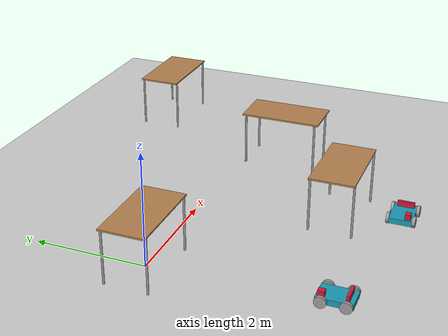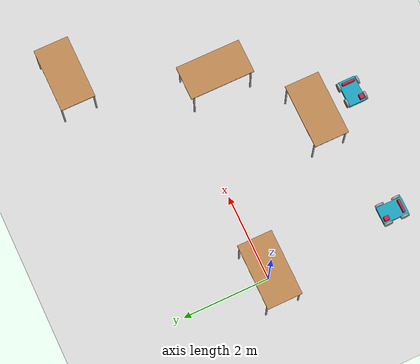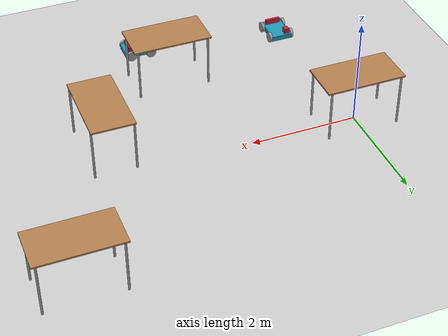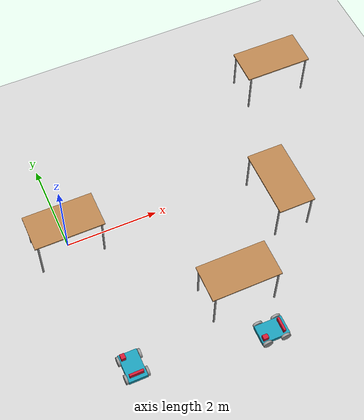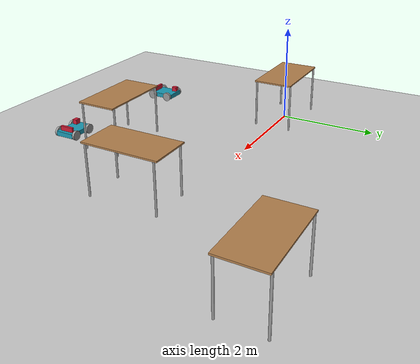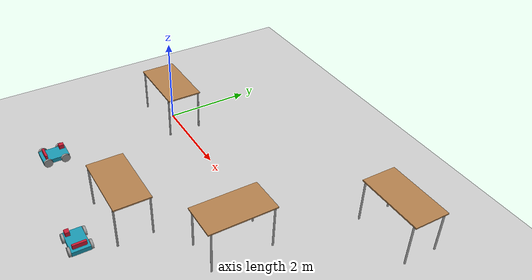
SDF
<sdf version="1.7">
 <world name="__default__">
  <model name="ground_plane">
   <static>1</static>
   <link name="link">
    <collision name="collision">
     <geometry><plane><normal>0 0 1</normal><size>100 100</size></plane></geometry>
     <surface>
      <contact><collide_bitmask>65535</collide_bitmask></contact>
      <friction><ode><mu>100</mu><mu2>50</mu2></ode></friction>
     </surface>
    </collision>
    <visual name="visual">
     <cast_shadows>0</cast_shadows>
     <geometry><plane><normal>0 0 1</normal><size>100 100</size></plane></geometry>
     <material>
      <script><uri>file://media/materials/scripts/gazebo.material</uri><name>Gazebo/Grey</name></script>
     </material>
    </visual>
   </link>
   <pose>-0.312516 -2.64331 0 0 -0 0</pose>
  </model>
  <model name="table">
   <static>1</static>
   <link name="link">
    <collision name="surface">
     <pose>0 0 1 0 -0 0</pose>
     <geometry><box><size>1.5 0.8 0.03</size></box></geometry>
     <surface><friction><ode><mu>0.6</mu><mu2>0.6</mu2></ode></friction></surface>
    </collision>
    <visual name="visual1">
     <pose>0 0 1 0 -0 0</pose>
     <geometry><box><size>1.5 0.8 0.03</size></box></geometry>
     <material>
      <script><uri>file://media/materials/scripts/gazebo.material</uri><name>Gazebo/Wood</name></script>
     </material>
    </visual>
    <collision name="front_left_leg">
     <pose>0.68 0.38 0.5 0 -0 0</pose>
     <geometry><cylinder><radius>0.02</radius><length>1</length></cylinder></geometry>
    </collision>
    <visual name="front_left_leg">
     <pose>0.68 0.38 0.5 0 -0 0</pose>
     <geometry><cylinder><radius>0.02</radius><length>1</length></cylinder></geometry>
     <material>
      <script><uri>file://media/materials/scripts/gazebo.material</uri><name>Gazebo/Grey</name></script>
     </material>
    </visual>
    <collision name="front_right_leg">
     <pose>0.68 -0.38 0.5 0 -0 0</pose>
     <geometry><cylinder><radius>0.02</radius><length>1</length></cylinder></geometry>
    </collision>
    <visual name="front_right_leg">
     <pose>0.68 -0.38 0.5 0 -0 0</pose>
     <geometry><cylinder><radius>0.02</radius><length>1</length></cylinder></geometry>
     <material>
      <script><uri>file://media/materials/scripts/gazebo.material</uri><name>Gazebo/Grey</name></script>
     </material>
    </visual>
    <collision name="back_right_leg">
     <pose>-0.68 -0.38 0.5 0 -0 0</pose>
     <geometry><cylinder><radius>0.02</radius><length>1</length></cylinder></geometry>
    </collision>
    <visual name="back_right_leg">
     <pose>-0.68 -0.38 0.5 0 -0 0</pose>
     <geometry><cylinder><radius>0.02</radius><length>1</length></cylinder></geometry>
     <material>
      <script><uri>file://media/materials/scripts/gazebo.material</uri><name>Gazebo/Grey</name></script>
     </material>
    </visual>
    <collision name="back_left_leg">
     <pose>-0.68 0.38 0.5 0 -0 0</pose>
     <geometry><cylinder><radius>0.02</radius><length>1</length></cylinder></geometry>
    </collision>
    <visual name="back_left_leg">
     <pose>-0.68 0.38 0.5 0 -0 0</pose>
     <geometry><cylinder><radius>0.02</radius><length>1</length></cylinder></geometry>
     <material>
      <script><uri>file://media/materials/scripts/gazebo.material</uri><name>Gazebo/Grey</name></script>
     </material>
    </visual>
   </link>
   <pose>5.79349 2.16075 0 0 -0 0</pose>
  </model>
  <model name="table_0">
   <static>1</static>
   <link name="link">
    <collision name="surface">
     <pose>0 0 1 0 -0 0</pose>
     <geometry><box><size>1.5 0.8 0.03</size></box></geometry>
     <surface><friction><ode><mu>0.6</mu><mu2>0.6</mu2></ode></friction></surface>
    </collision>
    <visual name="visual1">
     <pose>0 0 1 0 -0 0</pose>
     <geometry><box><size>1.5 0.8 0.03</size></box></geometry>
     <material>
      <script><uri>file://media/materials/scripts/gazebo.material</uri><name>Gazebo/Wood</name></script>
     </material>
    </visual>
    <collision name="front_left_leg">
     <pose>0.68 0.38 0.5 0 -0 0</pose>
     <geometry><cylinder><radius>0.02</radius><length>1</length></cylinder></geometry>
    </collision>
    <visual name="front_left_leg">
     <pose>0.68 0.38 0.5 0 -0 0</pose>
     <geometry><cylinder><radius>0.02</radius><length>1</length></cylinder></geometry>
     <material>
      <script><uri>file://media/materials/scripts/gazebo.material</uri><name>Gazebo/Grey</name></script>
     </material>
    </visual>
    <collision name="front_right_leg">
     <pose>0.68 -0.38 0.5 0 -0 0</pose>
     <geometry><cylinder><radius>0.02</radius><length>1</length></cylinder></geometry>
    </collision>
    <visual name="front_right_leg">
     <pose>0.68 -0.38 0.5 0 -0 0</pose>
     <geometry><cylinder><radius>0.02</radius><length>1</length></cylinder></geometry>
     <material>
      <script><uri>file://media/materials/scripts/gazebo.material</uri><name>Gazebo/Grey</name></script>
     </material>
    </visual>
    <collision name="back_right_leg">
     <pose>-0.68 -0.38 0.5 0 -0 0</pose>
     <geometry><cylinder><radius>0.02</radius><length>1</length></cylinder></geometry>
    </collision>
    <visual name="back_right_leg">
     <pose>-0.68 -0.38 0.5 0 -0 0</pose>
     <geometry><cylinder><radius>0.02</radius><length>1</length></cylinder></geometry>
     <material>
      <script><uri>file://media/materials/scripts/gazebo.material</uri><name>Gazebo/Grey</name></script>
     </material>
    </visual>
    <collision name="back_left_leg">
     <pose>-0.68 0.38 0.5 0 -0 0</pose>
     <geometry><cylinder><radius>0.02</radius><length>1</length></cylinder></geometry>
    </collision>
    <visual name="back_left_leg">
     <pose>-0.68 0.38 0.5 0 -0 0</pose>
     <geometry><cylinder><radius>0.02</radius><length>1</length></cylinder></geometry>
     <material>
      <script><uri>file://media/materials/scripts/gazebo.material</uri><name>Gazebo/Grey</name></script>
     </material>
    </visual>
   </link>
  </model>
  <model name="table_1">
   <static>1</static>
   <link name="link">
    <collision name="surface">
     <pose>0 0 1 0 -0 0</pose>
     <geometry><box><size>1.5 0.8 0.03</size></box></geometry>
     <surface><friction><ode><mu>0.6</mu><mu2>0.6</mu2></ode></friction></surface>
    </collision>
    <visual name="visual1">
     <pose>0 0 1 0 -0 0</pose>
     <geometry><box><size>1.5 0.8 0.03</size></box></geometry>
     <material>
      <script><uri>file://media/materials/scripts/gazebo.material</uri><name>Gazebo/Wood</name></script>
     </material>
    </visual>
    <collision name="front_left_leg">
     <pose>0.68 0.38 0.5 0 -0 0</pose>
     <geometry><cylinder><radius>0.02</radius><length>1</length></cylinder></geometry>
    </collision>
    <visual name="front_left_leg">
     <pose>0.68 0.38 0.5 0 -0 0</pose>
     <geometry><cylinder><radius>0.02</radius><length>1</length></cylinder></geometry>
     <material>
      <script><uri>file://media/materials/scripts/gazebo.material</uri><name>Gazebo/Grey</name></script>
     </material>
    </visual>
    <collision name="front_right_leg">
     <pose>0.68 -0.38 0.5 0 -0 0</pose>
     <geometry><cylinder><radius>0.02</radius><length>1</length></cylinder></geometry>
    </collision>
    <visual name="front_right_leg">
     <pose>0.68 -0.38 0.5 0 -0 0</pose>
     <geometry><cylinder><radius>0.02</radius><length>1</length></cylinder></geometry>
     <material>
      <script><uri>file://media/materials/scripts/gazebo.material</uri><name>Gazebo/Grey</name></script>
     </material>
    </visual>
    <collision name="back_right_leg">
     <pose>-0.68 -0.38 0.5 0 -0 0</pose>
     <geometry><cylinder><radius>0.02</radius><length>1</length></cylinder></geometry>
    </collision>
    <visual name="back_right_leg">
     <pose>-0.68 -0.38 0.5 0 -0 0</pose>
     <geometry><cylinder><radius>0.02</radius><length>1</length></cylinder></geometry>
     <material>
      <script><uri>file://media/materials/scripts/gazebo.material</uri><name>Gazebo/Grey</name></script>
     </material>
    </visual>
    <collision name="back_left_leg">
     <pose>-0.68 0.38 0.5 0 -0 0</pose>
     <geometry><cylinder><radius>0.02</radius><length>1</length></cylinder></geometry>
    </collision>
    <visual name="back_left_leg">
     <pose>-0.68 0.38 0.5 0 -0 0</pose>
     <geometry><cylinder><radius>0.02</radius><length>1</length></cylinder></geometry>
     <material>
      <script><uri>file://media/materials/scripts/gazebo.material</uri><name>Gazebo/Grey</name></script>
     </material>
    </visual>
   </link>
   <pose>2.74236 -2.43445 0 0 -0 0</pose>
  </model>
  <model name="table_4">
   <static>1</static>
   <link name="link">
    <collision name="surface">
     <pose>0 0 1 0 -0 0</pose>
     <geometry><box><size>1.5 0.8 0.03</size></box></geometry>
     <surface><friction><ode><mu>0.6</mu><mu2>0.6</mu2></ode></friction></surface>
    </collision>
    <visual name="visual1">
     <pose>0 0 1 0 -0 0</pose>
     <geometry><box><size>1.5 0.8 0.03</size></box></geometry>
     <material>
      <script><uri>file://media/materials/scripts/gazebo.material</uri><name>Gazebo/Wood</name></script>
     </material>
    </visual>
    <collision name="front_left_leg">
     <pose>0.68 0.38 0.5 0 -0 0</pose>
     <geometry><cylinder><radius>0.02</radius><length>1</length></cylinder></geometry>
    </collision>
    <visual name="front_left_leg">
     <pose>0.68 0.38 0.5 0 -0 0</pose>
     <geometry><cylinder><radius>0.02</radius><length>1</length></cylinder></geometry>
     <material>
      <script><uri>file://media/materials/scripts/gazebo.material</uri><name>Gazebo/Grey</name></script>
     </material>
    </visual>
    <collision name="front_right_leg">
     <pose>0.68 -0.38 0.5 0 -0 0</pose>
     <geometry><cylinder><radius>0.02</radius><length>1</length></cylinder></geometry>
    </collision>
    <visual name="front_right_leg">
     <pose>0.68 -0.38 0.5 0 -0 0</pose>
     <geometry><cylinder><radius>0.02</radius><length>1</length></cylinder></geometry>
     <material>
      <script><uri>file://media/materials/scripts/gazebo.material</uri><name>Gazebo/Grey</name></script>
     </material>
    </visual>
    <collision name="back_right_leg">
     <pose>-0.68 -0.38 0.5 0 -0 0</pose>
     <geometry><cylinder><radius>0.02</radius><length>1</length></cylinder></geometry>
    </collision>
    <visual name="back_right_leg">
     <pose>-0.68 -0.38 0.5 0 -0 0</pose>
     <geometry><cylinder><radius>0.02</radius><length>1</length></cylinder></geometry>
     <material>
      <script><uri>file://media/materials/scripts/gazebo.material</uri><name>Gazebo/Grey</name></script>
     </material>
    </visual>
    <collision name="back_left_leg">
     <pose>-0.68 0.38 0.5 0 -0 0</pose>
     <geometry><cylinder><radius>0.02</radius><length>1</length></cylinder></geometry>
    </collision>
    <visual name="back_left_leg">
     <pose>-0.68 0.38 0.5 0 -0 0</pose>
     <geometry><cylinder><radius>0.02</radius><length>1</length></cylinder></geometry>
     <material>
      <script><uri>file://media/materials/scripts/gazebo.material</uri><name>Gazebo/Grey</name></script>
     </material>
    </visual>
   </link>
   <pose>4.48849 -0.834132 0 0 -0 1.5707</pose>
  </model>
  <model name="RoverBot">
   <link name="link_1">
    <inertial>
     <mass>1</mass>
     <inertia>
      <ixx>0.166667</ixx>
      <ixy>0</ixy>
      <ixz>0</ixz>
      <iyy>0.166667</iyy>
      <iyz>0</iyz>
      <izz>0.166667</izz>
     </inertia>
    </inertial>
    <pose>0.016896 -0.001903 -0.028571 0 -0 0</pose>
    <visual name="visual">
     <geometry><box><size>0.4 0.6 0.1</size></box></geometry>
     <material>
      <lighting>1</lighting>
      <script><uri>file://media/materials/scripts/gazebo.material</uri><name>Gazebo/Grey</name></script>
      <shader type="pixel"><normal_map>__default__</normal_map></shader>
      <ambient>0.1 0.6 0.7 1</ambient>
      <diffuse>0.7 0.7 0.7 1</diffuse>
      <specular>0.01 0.01 0.01 1</specular>
      <emissive>0 0 0 1</emissive>
     </material>
    </visual>
    <collision name="collision">
     <geometry><box><size>0.4 0.6 0.1</size></box></geometry>
     <surface>
      <friction>
       <ode><mu>1</mu><mu2>1</mu2><fdir1>0 0 0</fdir1><slip1>0</slip1><slip2>0</slip2></ode>
       <torsional>
        <coefficient>1</coefficient>
        <patch_radius>0</patch_radius>
        <surface_radius>0</surface_radius>
        <use_patch_radius>1</use_patch_radius>
        <ode><slip>0</slip></ode>
       </torsional>
      </friction>
      <bounce><restitution_coefficient>0</restitution_coefficient><threshold>1e+06</threshold></bounce>
      <contact>
       <collide_without_contact>0</collide_without_contact>
       <collide_without_contact_bitmask>1</collide_without_contact_bitmask>
       <collide_bitmask>1</collide_bitmask>
       <ode>
        <soft_cfm>0</soft_cfm>
        <soft_erp>0.2</soft_erp>
        <kp>1e+13</kp>
        <kd>1</kd>
        <max_vel>0.01</max_vel>
        <min_depth>0</min_depth>
       </ode>
       <bullet>
        <split_impulse>1</split_impulse>
        <split_impulse_penetration_threshold>-0.01</split_impulse_penetration_threshold>
        <soft_cfm>0</soft_cfm>
        <soft_erp>0.2</soft_erp>
        <kp>1e+13</kp>
        <kd>1</kd>
       </bullet>
      </contact>
     </surface>
    </collision>
   </link>
   <link name="link_2">
    <inertial>
     <mass>1</mass>
     <inertia><ixx>0.145833</ixx><ixy>0</ixy><ixz>0</ixz><iyy>0.145833</iyy><iyz>0</iyz><izz>0.125</izz></inertia>
    </inertial>
    <pose>0.241896 -0.201903 -0.028571 0 1.5707 0</pose>
    <visual name="visual">
     <geometry><cylinder><radius>0.1</radius><length>0.05</length></cylinder></geometry>
     <material>
      <lighting>1</lighting>
      <script><uri>file://media/materials/scripts/gazebo.material</uri><name>Gazebo/Grey</name></script>
      <shader type="pixel"><normal_map>__default__</normal_map></shader>
      <ambient>0 0 0 1</ambient>
      <diffuse>0.7 0.7 0.7 1</diffuse>
      <specular>0.01 0.01 0.01 1</specular>
      <emissive>0 0 0 1</emissive>
     </material>
    </visual>
    <collision name="collision">
     <geometry><cylinder><radius>0.1</radius><length>0.05</length></cylinder></geometry>
     <surface>
      <friction>
       <ode><mu>1</mu><mu2>1</mu2><fdir1>0 0 0</fdir1><slip1>0</slip1><slip2>0</slip2></ode>
       <torsional>
        <coefficient>1</coefficient>
        <patch_radius>0</patch_radius>
        <surface_radius>0</surface_radius>
        <use_patch_radius>1</use_patch_radius>
        <ode><slip>0</slip></ode>
       </torsional>
      </friction>
      <bounce><restitution_coefficient>0</restitution_coefficient><threshold>1e+06</threshold></bounce>
      <contact>
       <collide_without_contact>0</collide_without_contact>
       <collide_without_contact_bitmask>1</collide_without_contact_bitmask>
       <collide_bitmask>1</collide_bitmask>
       <ode>
        <soft_cfm>0</soft_cfm>
        <soft_erp>0.2</soft_erp>
        <kp>1e+13</kp>
        <kd>1</kd>
        <max_vel>0.01</max_vel>
        <min_depth>0</min_depth>
       </ode>
       <bullet>
        <split_impulse>1</split_impulse>
        <split_impulse_penetration_threshold>-0.01</split_impulse_penetration_threshold>
        <soft_cfm>0</soft_cfm>
        <soft_erp>0.2</soft_erp>
        <kp>1e+13</kp>
        <kd>1</kd>
       </bullet>
      </contact>
     </surface>
    </collision>
   </link>
   <link name="link_2_clone">
    <inertial>
     <mass>1</mass>
     <inertia><ixx>0.145833</ixx><ixy>0</ixy><ixz>0</ixz><iyy>0.145833</iyy><iyz>0</iyz><izz>0.125</izz></inertia>
    </inertial>
    <pose>0.241896 0.198097 -0.028571 0 1.5707 0</pose>
    <visual name="visual">
     <geometry><cylinder><radius>0.1</radius><length>0.05</length></cylinder></geometry>
     <material>
      <lighting>1</lighting>
      <script><uri>file://media/materials/scripts/gazebo.material</uri><name>Gazebo/Grey</name></script>
      <shader type="pixel"><normal_map>__default__</normal_map></shader>
      <ambient>0 0 0 1</ambient>
      <diffuse>0.7 0.7 0.7 1</diffuse>
      <specular>0.01 0.01 0.01 1</specular>
      <emissive>0 0 0 1</emissive>
     </material>
    </visual>
    <collision name="collision">
     <geometry><cylinder><radius>0.1</radius><length>0.05</length></cylinder></geometry>
     <surface>
      <friction>
       <ode><mu>1</mu><mu2>1</mu2><fdir1>0 0 0</fdir1><slip1>0</slip1><slip2>0</slip2></ode>
       <torsional>
        <coefficient>1</coefficient>
        <patch_radius>0</patch_radius>
        <surface_radius>0</surface_radius>
        <use_patch_radius>1</use_patch_radius>
        <ode><slip>0</slip></ode>
       </torsional>
      </friction>
      <bounce><restitution_coefficient>0</restitution_coefficient><threshold>1e+06</threshold></bounce>
      <contact>
       <collide_without_contact>0</collide_without_contact>
       <collide_without_contact_bitmask>1</collide_without_contact_bitmask>
       <collide_bitmask>1</collide_bitmask>
       <ode>
        <soft_cfm>0</soft_cfm>
        <soft_erp>0.2</soft_erp>
        <kp>1e+13</kp>
        <kd>1</kd>
        <max_vel>0.01</max_vel>
        <min_depth>0</min_depth>
       </ode>
       <bullet>
        <split_impulse>1</split_impulse>
        <split_impulse_penetration_threshold>-0.01</split_impulse_penetration_threshold>
        <soft_cfm>0</soft_cfm>
        <soft_erp>0.2</soft_erp>
        <kp>1e+13</kp>
        <kd>1</kd>
       </bullet>
      </contact>
     </surface>
    </collision>
   </link>
   <link name="link_2_clone_clone">
    <inertial>
     <mass>1</mass>
     <inertia><ixx>0.145833</ixx><ixy>0</ixy><ixz>0</ixz><iyy>0.145833</iyy><iyz>0</iyz><izz>0.125</izz></inertia>
    </inertial>
    <pose>-0.208104 -0.201903 -0.028571 0 1.5707 0</pose>
    <visual name="visual">
     <geometry><cylinder><radius>0.1</radius><length>0.05</length></cylinder></geometry>
     <material>
      <lighting>1</lighting>
      <script><uri>file://media/materials/scripts/gazebo.material</uri><name>Gazebo/Grey</name></script>
      <shader type="pixel"><normal_map>__default__</normal_map></shader>
      <ambient>0 0 0 1</ambient>
      <diffuse>0.7 0.7 0.7 1</diffuse>
      <specular>0.01 0.01 0.01 1</specular>
      <emissive>0 0 0 1</emissive>
     </material>
    </visual>
    <collision name="collision">
     <geometry><cylinder><radius>0.1</radius><length>0.05</length></cylinder></geometry>
     <surface>
      <friction>
       <ode><mu>1</mu><mu2>1</mu2><fdir1>0 0 0</fdir1><slip1>0</slip1><slip2>0</slip2></ode>
       <torsional>
        <coefficient>1</coefficient>
        <patch_radius>0</patch_radius>
        <surface_radius>0</surface_radius>
        <use_patch_radius>1</use_patch_radius>
        <ode><slip>0</slip></ode>
       </torsional>
      </friction>
      <bounce><restitution_coefficient>0</restitution_coefficient><threshold>1e+06</threshold></bounce>
      <contact>
       <collide_without_contact>0</collide_without_contact>
       <collide_without_contact_bitmask>1</collide_without_contact_bitmask>
       <collide_bitmask>1</collide_bitmask>
       <ode>
        <soft_cfm>0</soft_cfm>
        <soft_erp>0.2</soft_erp>
        <kp>1e+13</kp>
        <kd>1</kd>
        <max_vel>0.01</max_vel>
        <min_depth>0</min_depth>
       </ode>
       <bullet>
        <split_impulse>1</split_impulse>
        <split_impulse_penetration_threshold>-0.01</split_impulse_penetration_threshold>
        <soft_cfm>0</soft_cfm>
        <soft_erp>0.2</soft_erp>
        <kp>1e+13</kp>
        <kd>1</kd>
       </bullet>
      </contact>
     </surface>
    </collision>
   </link>
   <link name="link_2_clone_clone_clone">
    <inertial>
     <mass>1</mass>
     <inertia><ixx>0.145833</ixx><ixy>0</ixy><ixz>0</ixz><iyy>0.145833</iyy><iyz>0</iyz><izz>0.125</izz></inertia>
    </inertial>
    <pose>-0.208104 0.198097 -0.028571 0 1.5707 0</pose>
    <visual name="visual">
     <geometry><cylinder><radius>0.1</radius><length>0.05</length></cylinder></geometry>
     <material>
      <lighting>1</lighting>
      <script><uri>file://media/materials/scripts/gazebo.material</uri><name>Gazebo/Grey</name></script>
      <shader type="pixel"><normal_map>__default__</normal_map></shader>
      <ambient>0 0 0 1</ambient>
      <diffuse>0.7 0.7 0.7 1</diffuse>
      <specular>0.01 0.01 0.01 1</specular>
      <emissive>0 0 0 1</emissive>
     </material>
    </visual>
    <collision name="collision">
     <geometry><cylinder><radius>0.1</radius><length>0.05</length></cylinder></geometry>
     <surface>
      <friction>
       <ode><mu>1</mu><mu2>1</mu2><fdir1>0 0 0</fdir1><slip1>0</slip1><slip2>0</slip2></ode>
       <torsional>
        <coefficient>1</coefficient>
        <patch_radius>0</patch_radius>
        <surface_radius>0</surface_radius>
        <use_patch_radius>1</use_patch_radius>
        <ode><slip>0</slip></ode>
       </torsional>
      </friction>
      <bounce><restitution_coefficient>0</restitution_coefficient><threshold>1e+06</threshold></bounce>
      <contact>
       <collide_without_contact>0</collide_without_contact>
       <collide_without_contact_bitmask>1</collide_without_contact_bitmask>
       <collide_bitmask>1</collide_bitmask>
       <ode>
        <soft_cfm>0</soft_cfm>
        <soft_erp>0.2</soft_erp>
        <kp>1e+13</kp>
        <kd>1</kd>
        <max_vel>0.01</max_vel>
        <min_depth>0</min_depth>
       </ode>
       <bullet>
        <split_impulse>1</split_impulse>
        <split_impulse_penetration_threshold>-0.01</split_impulse_penetration_threshold>
        <soft_cfm>0</soft_cfm>
        <soft_erp>0.2</soft_erp>
        <kp>1e+13</kp>
        <kd>1</kd>
       </bullet>
      </contact>
     </surface>
    </collision>
   </link>
   <link name="link_3">
    <inertial>
     <mass>0.00107576</mass>
     <inertia>
      <ixx>2.02e-06</ixx>
      <ixy>0</ixy>
      <ixz>0</ixz>
      <iyy>1.72e-06</iyy>
      <iyz>0</iyz>
      <izz>1.97e-06</izz>
     </inertia>
    </inertial>
    <pose>-0.101376 0.211415 0.071429 0 -0 0</pose>
    <visual name="visual">
     <geometry><box><size>0.09633 0.112486 0.1</size></box></geometry>
     <material>
      <lighting>1</lighting>
      <script><uri>file://media/materials/scripts/gazebo.material</uri><name>Gazebo/Grey</name></script>
      <shader type="pixel"><normal_map>__default__</normal_map></shader>
      <ambient>0.8 0.1 0.2 1</ambient>
      <diffuse>0.7 0.7 0.7 1</diffuse>
      <specular>0.01 0.01 0.01 1</specular>
      <emissive>0 0 0 1</emissive>
     </material>
    </visual>
    <collision name="collision">
     <geometry><box><size>0.09633 0.112486 0.099352</size></box></geometry>
     <surface>
      <friction>
       <ode><mu>1</mu><mu2>1</mu2><fdir1>0 0 0</fdir1><slip1>0</slip1><slip2>0</slip2></ode>
       <torsional>
        <coefficient>1</coefficient>
        <patch_radius>0</patch_radius>
        <surface_radius>0</surface_radius>
        <use_patch_radius>1</use_patch_radius>
        <ode><slip>0</slip></ode>
       </torsional>
      </friction>
      <bounce><restitution_coefficient>0</restitution_coefficient><threshold>1e+06</threshold></bounce>
      <contact>
       <collide_without_contact>0</collide_without_contact>
       <collide_without_contact_bitmask>1</collide_without_contact_bitmask>
       <collide_bitmask>1</collide_bitmask>
       <ode>
        <soft_cfm>0</soft_cfm>
        <soft_erp>0.2</soft_erp>
        <kp>1e+13</kp>
        <kd>1</kd>
        <max_vel>0.01</max_vel>
        <min_depth>0</min_depth>
       </ode>
       <bullet>
        <split_impulse>1</split_impulse>
        <split_impulse_penetration_threshold>-0.01</split_impulse_penetration_threshold>
        <soft_cfm>0</soft_cfm>
        <soft_erp>0.2</soft_erp>
        <kp>1e+13</kp>
        <kd>1</kd>
       </bullet>
      </contact>
     </surface>
    </collision>
   </link>
   <link name="link_4">
    <inertial>
     <mass>0.0055058</mass>
     <inertia>
      <ixx>1.226e-05</ixx>
      <ixy>0</ixy>
      <ixz>0</ixz>
      <iyy>8.418e-05</iyy>
      <iyz>0</iyz>
      <izz>8.541e-05</izz>
     </inertia>
    </inertial>
    <pose>0.016896 -0.201903 0.071429 0 -0 0</pose>
    <visual name="visual">
     <geometry><box><size>0.3 0.05 0.1</size></box></geometry>
     <material>
      <lighting>1</lighting>
      <script><uri>file://media/materials/scripts/gazebo.material</uri><name>Gazebo/Grey</name></script>
      <shader type="pixel"><normal_map>__default__</normal_map></shader>
      <ambient>0.8 0.1 0.2 1</ambient>
      <diffuse>0.7 0.7 0.7 1</diffuse>
      <specular>0.01 0.01 0.01 1</specular>
      <emissive>0 0 0 1</emissive>
     </material>
    </visual>
    <collision name="collision">
     <geometry><box><size>0.3 0.05 0.1</size></box></geometry>
     <surface>
      <friction>
       <ode><mu>1</mu><mu2>1</mu2><fdir1>0 0 0</fdir1><slip1>0</slip1><slip2>0</slip2></ode>
       <torsional>
        <coefficient>1</coefficient>
        <patch_radius>0</patch_radius>
        <surface_radius>0</surface_radius>
        <use_patch_radius>1</use_patch_radius>
        <ode><slip>0</slip></ode>
       </torsional>
      </friction>
      <bounce><restitution_coefficient>0</restitution_coefficient><threshold>1e+06</threshold></bounce>
      <contact>
       <collide_without_contact>0</collide_without_contact>
       <collide_without_contact_bitmask>1</collide_without_contact_bitmask>
       <collide_bitmask>1</collide_bitmask>
       <ode>
        <soft_cfm>0</soft_cfm>
        <soft_erp>0.2</soft_erp>
        <kp>1e+13</kp>
        <kd>1</kd>
        <max_vel>0.01</max_vel>
        <min_depth>0</min_depth>
       </ode>
       <bullet>
        <split_impulse>1</split_impulse>
        <split_impulse_penetration_threshold>-0.01</split_impulse_penetration_threshold>
        <soft_cfm>0</soft_cfm>
        <soft_erp>0.2</soft_erp>
        <kp>1e+13</kp>
        <kd>1</kd>
       </bullet>
      </contact>
     </surface>
    </collision>
   </link>
   <joint name="link_1_JOINT_0" type="revolute">
    <parent>link_1</parent>
    <child>link_2_clone_clone</child>
    <axis>
     <xyz>0 0 1</xyz>
     <limit>
      <lower>-1.79769e+308</lower>
      <upper>1.79769e+308</upper>
      <effort>-1</effort>
      <velocity>-1</velocity>
     </limit>
     <dynamics>
      <spring_reference>0</spring_reference>
      <spring_stiffness>0</spring_stiffness>
      <damping>0</damping>
      <friction>0</friction>
     </dynamics>
    </axis>
    <physics>
     <ode><limit><cfm>0</cfm><erp>0.2</erp></limit><suspension><cfm>0</cfm><erp>0.2</erp></suspension></ode>
    </physics>
   </joint>
   <joint name="link_1_JOINT_1" type="revolute">
    <parent>link_1</parent>
    <child>link_2</child>
    <axis>
     <xyz>0 0 1</xyz>
     <limit>
      <lower>-1.79769e+308</lower>
      <upper>1.79769e+308</upper>
      <effort>-1</effort>
      <velocity>-1</velocity>
     </limit>
     <dynamics>
      <spring_reference>0</spring_reference>
      <spring_stiffness>0</spring_stiffness>
      <damping>0</damping>
      <friction>0</friction>
     </dynamics>
    </axis>
    <physics>
     <ode><limit><cfm>0</cfm><erp>0.2</erp></limit><suspension><cfm>0</cfm><erp>0.2</erp></suspension></ode>
    </physics>
   </joint>
   <joint name="link_1_JOINT_4" type="revolute">
    <parent>link_1</parent>
    <child>link_2_clone_clone_clone</child>
    <axis>
     <xyz>0 0 1</xyz>
     <limit>
      <lower>-1.79769e+308</lower>
      <upper>1.79769e+308</upper>
      <effort>-1</effort>
      <velocity>-1</velocity>
     </limit>
     <dynamics>
      <spring_reference>0</spring_reference>
      <spring_stiffness>0</spring_stiffness>
      <damping>0</damping>
      <friction>0</friction>
     </dynamics>
    </axis>
    <physics>
     <ode><limit><cfm>0</cfm><erp>0.2</erp></limit><suspension><cfm>0</cfm><erp>0.2</erp></suspension></ode>
    </physics>
   </joint>
   <joint name="link_1_JOINT_5" type="revolute">
    <parent>link_1</parent>
    <child>link_2_clone</child>
    <axis>
     <xyz>0 0 1</xyz>
     <limit>
      <lower>-1.79769e+308</lower>
      <upper>1.79769e+308</upper>
      <effort>-1</effort>
      <velocity>-1</velocity>
     </limit>
     <dynamics>
      <spring_reference>0</spring_reference>
      <spring_stiffness>0</spring_stiffness>
      <damping>0</damping>
      <friction>0</friction>
     </dynamics>
    </axis>
    <physics>
     <ode><limit><cfm>0</cfm><erp>0.2</erp></limit><suspension><cfm>0</cfm><erp>0.2</erp></suspension></ode>
    </physics>
   </joint>
   <joint name="link_1_JOINT_6" type="fixed">
    <parent>link_1</parent>
    <child>link_3</child>
    <physics>
     <ode><limit><cfm>0</cfm><erp>0.2</erp></limit><suspension><cfm>0</cfm><erp>0.2</erp></suspension></ode>
    </physics>
   </joint>
   <joint name="link_1_JOINT_7" type="fixed">
    <parent>link_1</parent>
    <child>link_4</child>
    <physics>
     <ode><limit><cfm>0</cfm><erp>0.2</erp></limit><suspension><cfm>0</cfm><erp>0.2</erp></suspension></ode>
    </physics>
   </joint>
   <static>0</static>
   <pose>0.181831 -3.08008 0.128573 0 0 -0.00082</pose>
  </model>
  <model name="RoverBot_0">
   <link name="link_1">
    <inertial>
     <mass>1</mass>
     <inertia>
      <ixx>0.166667</ixx>
      <ixy>0</ixy>
      <ixz>0</ixz>
      <iyy>0.166667</iyy>
      <iyz>0</iyz>
      <izz>0.166667</izz>
     </inertia>
    </inertial>
    <pose>0.016896 -0.001903 -0.028571 0 -0 0</pose>
    <visual name="visual">
     <geometry><box><size>0.4 0.6 0.1</size></box></geometry>
     <material>
      <lighting>1</lighting>
      <script><uri>file://media/materials/scripts/gazebo.material</uri><name>Gazebo/Grey</name></script>
      <shader type="pixel"><normal_map>__default__</normal_map></shader>
      <ambient>0.1 0.6 0.7 1</ambient>
      <diffuse>0.7 0.7 0.7 1</diffuse>
      <specular>0.01 0.01 0.01 1</specular>
      <emissive>0 0 0 1</emissive>
     </material>
    </visual>
    <collision name="collision">
     <geometry><box><size>0.4 0.6 0.1</size></box></geometry>
     <surface>
      <friction>
       <ode><mu>1</mu><mu2>1</mu2><fdir1>0 0 0</fdir1><slip1>0</slip1><slip2>0</slip2></ode>
       <torsional>
        <coefficient>1</coefficient>
        <patch_radius>0</patch_radius>
        <surface_radius>0</surface_radius>
        <use_patch_radius>1</use_patch_radius>
        <ode><slip>0</slip></ode>
       </torsional>
      </friction>
      <bounce><restitution_coefficient>0</restitution_coefficient><threshold>1e+06</threshold></bounce>
      <contact>
       <collide_without_contact>0</collide_without_contact>
       <collide_without_contact_bitmask>1</collide_without_contact_bitmask>
       <collide_bitmask>1</collide_bitmask>
       <ode>
        <soft_cfm>0</soft_cfm>
        <soft_erp>0.2</soft_erp>
        <kp>1e+13</kp>
        <kd>1</kd>
        <max_vel>0.01</max_vel>
        <min_depth>0</min_depth>
       </ode>
       <bullet>
        <split_impulse>1</split_impulse>
        <split_impulse_penetration_threshold>-0.01</split_impulse_penetration_threshold>
        <soft_cfm>0</soft_cfm>
        <soft_erp>0.2</soft_erp>
        <kp>1e+13</kp>
        <kd>1</kd>
       </bullet>
      </contact>
     </surface>
    </collision>
   </link>
   <link name="link_2">
    <inertial>
     <mass>1</mass>
     <inertia><ixx>0.145833</ixx><ixy>0</ixy><ixz>0</ixz><iyy>0.145833</iyy><iyz>0</iyz><izz>0.125</izz></inertia>
    </inertial>
    <pose>0.241896 -0.201903 -0.028571 0 1.5707 0</pose>
    <visual name="visual">
     <geometry><cylinder><radius>0.1</radius><length>0.05</length></cylinder></geometry>
     <material>
      <lighting>1</lighting>
      <script><uri>file://media/materials/scripts/gazebo.material</uri><name>Gazebo/Grey</name></script>
      <shader type="pixel"><normal_map>__default__</normal_map></shader>
      <ambient>0 0 0 1</ambient>
      <diffuse>0.7 0.7 0.7 1</diffuse>
      <specular>0.01 0.01 0.01 1</specular>
      <emissive>0 0 0 1</emissive>
     </material>
    </visual>
    <collision name="collision">
     <geometry><cylinder><radius>0.1</radius><length>0.05</length></cylinder></geometry>
     <surface>
      <friction>
       <ode><mu>1</mu><mu2>1</mu2><fdir1>0 0 0</fdir1><slip1>0</slip1><slip2>0</slip2></ode>
       <torsional>
        <coefficient>1</coefficient>
        <patch_radius>0</patch_radius>
        <surface_radius>0</surface_radius>
        <use_patch_radius>1</use_patch_radius>
        <ode><slip>0</slip></ode>
       </torsional>
      </friction>
      <bounce><restitution_coefficient>0</restitution_coefficient><threshold>1e+06</threshold></bounce>
      <contact>
       <collide_without_contact>0</collide_without_contact>
       <collide_without_contact_bitmask>1</collide_without_contact_bitmask>
       <collide_bitmask>1</collide_bitmask>
       <ode>
        <soft_cfm>0</soft_cfm>
        <soft_erp>0.2</soft_erp>
        <kp>1e+13</kp>
        <kd>1</kd>
        <max_vel>0.01</max_vel>
        <min_depth>0</min_depth>
       </ode>
       <bullet>
        <split_impulse>1</split_impulse>
        <split_impulse_penetration_threshold>-0.01</split_impulse_penetration_threshold>
        <soft_cfm>0</soft_cfm>
        <soft_erp>0.2</soft_erp>
        <kp>1e+13</kp>
        <kd>1</kd>
       </bullet>
      </contact>
     </surface>
    </collision>
   </link>
   <link name="link_2_clone">
    <inertial>
     <mass>1</mass>
     <inertia><ixx>0.145833</ixx><ixy>0</ixy><ixz>0</ixz><iyy>0.145833</iyy><iyz>0</iyz><izz>0.125</izz></inertia>
    </inertial>
    <pose>0.241896 0.198097 -0.028571 0 1.5707 0</pose>
    <visual name="visual">
     <geometry><cylinder><radius>0.1</radius><length>0.05</length></cylinder></geometry>
     <material>
      <lighting>1</lighting>
      <script><uri>file://media/materials/scripts/gazebo.material</uri><name>Gazebo/Grey</name></script>
      <shader type="pixel"><normal_map>__default__</normal_map></shader>
      <ambient>0 0 0 1</ambient>
      <diffuse>0.7 0.7 0.7 1</diffuse>
      <specular>0.01 0.01 0.01 1</specular>
      <emissive>0 0 0 1</emissive>
     </material>
    </visual>
    <collision name="collision">
     <geometry><cylinder><radius>0.1</radius><length>0.05</length></cylinder></geometry>
     <surface>
      <friction>
       <ode><mu>1</mu><mu2>1</mu2><fdir1>0 0 0</fdir1><slip1>0</slip1><slip2>0</slip2></ode>
       <torsional>
        <coefficient>1</coefficient>
        <patch_radius>0</patch_radius>
        <surface_radius>0</surface_radius>
        <use_patch_radius>1</use_patch_radius>
        <ode><slip>0</slip></ode>
       </torsional>
      </friction>
      <bounce><restitution_coefficient>0</restitution_coefficient><threshold>1e+06</threshold></bounce>
      <contact>
       <collide_without_contact>0</collide_without_contact>
       <collide_without_contact_bitmask>1</collide_without_contact_bitmask>
       <collide_bitmask>1</collide_bitmask>
       <ode>
        <soft_cfm>0</soft_cfm>
        <soft_erp>0.2</soft_erp>
        <kp>1e+13</kp>
        <kd>1</kd>
        <max_vel>0.01</max_vel>
        <min_depth>0</min_depth>
       </ode>
       <bullet>
        <split_impulse>1</split_impulse>
        <split_impulse_penetration_threshold>-0.01</split_impulse_penetration_threshold>
        <soft_cfm>0</soft_cfm>
        <soft_erp>0.2</soft_erp>
        <kp>1e+13</kp>
        <kd>1</kd>
       </bullet>
      </contact>
     </surface>
    </collision>
   </link>
   <link name="link_2_clone_clone">
    <inertial>
     <mass>1</mass>
     <inertia><ixx>0.145833</ixx><ixy>0</ixy><ixz>0</ixz><iyy>0.145833</iyy><iyz>0</iyz><izz>0.125</izz></inertia>
    </inertial>
    <pose>-0.208104 -0.201903 -0.028571 0 1.5707 0</pose>
    <visual name="visual">
     <geometry><cylinder><radius>0.1</radius><length>0.05</length></cylinder></geometry>
     <material>
      <lighting>1</lighting>
      <script><uri>file://media/materials/scripts/gazebo.material</uri><name>Gazebo/Grey</name></script>
      <shader type="pixel"><normal_map>__default__</normal_map></shader>
      <ambient>0 0 0 1</ambient>
      <diffuse>0.7 0.7 0.7 1</diffuse>
      <specular>0.01 0.01 0.01 1</specular>
      <emissive>0 0 0 1</emissive>
     </material>
    </visual>
    <collision name="collision">
     <geometry><cylinder><radius>0.1</radius><length>0.05</length></cylinder></geometry>
     <surface>
      <friction>
       <ode><mu>1</mu><mu2>1</mu2><fdir1>0 0 0</fdir1><slip1>0</slip1><slip2>0</slip2></ode>
       <torsional>
        <coefficient>1</coefficient>
        <patch_radius>0</patch_radius>
        <surface_radius>0</surface_radius>
        <use_patch_radius>1</use_patch_radius>
        <ode><slip>0</slip></ode>
       </torsional>
      </friction>
      <bounce><restitution_coefficient>0</restitution_coefficient><threshold>1e+06</threshold></bounce>
      <contact>
       <collide_without_contact>0</collide_without_contact>
       <collide_without_contact_bitmask>1</collide_without_contact_bitmask>
       <collide_bitmask>1</collide_bitmask>
       <ode>
        <soft_cfm>0</soft_cfm>
        <soft_erp>0.2</soft_erp>
        <kp>1e+13</kp>
        <kd>1</kd>
        <max_vel>0.01</max_vel>
        <min_depth>0</min_depth>
       </ode>
       <bullet>
        <split_impulse>1</split_impulse>
        <split_impulse_penetration_threshold>-0.01</split_impulse_penetration_threshold>
        <soft_cfm>0</soft_cfm>
        <soft_erp>0.2</soft_erp>
        <kp>1e+13</kp>
        <kd>1</kd>
       </bullet>
      </contact>
     </surface>
    </collision>
   </link>
   <link name="link_2_clone_clone_clone">
    <inertial>
     <mass>1</mass>
     <inertia><ixx>0.145833</ixx><ixy>0</ixy><ixz>0</ixz><iyy>0.145833</iyy><iyz>0</iyz><izz>0.125</izz></inertia>
    </inertial>
    <pose>-0.208104 0.198097 -0.028571 0 1.5707 0</pose>
    <visual name="visual">
     <geometry><cylinder><radius>0.1</radius><length>0.05</length></cylinder></geometry>
     <material>
      <lighting>1</lighting>
      <script><uri>file://media/materials/scripts/gazebo.material</uri><name>Gazebo/Grey</name></script>
      <shader type="pixel"><normal_map>__default__</normal_map></shader>
      <ambient>0 0 0 1</ambient>
      <diffuse>0.7 0.7 0.7 1</diffuse>
      <specular>0.01 0.01 0.01 1</specular>
      <emissive>0 0 0 1</emissive>
     </material>
    </visual>
    <collision name="collision">
     <geometry><cylinder><radius>0.1</radius><length>0.05</length></cylinder></geometry>
     <surface>
      <friction>
       <ode><mu>1</mu><mu2>1</mu2><fdir1>0 0 0</fdir1><slip1>0</slip1><slip2>0</slip2></ode>
       <torsional>
        <coefficient>1</coefficient>
        <patch_radius>0</patch_radius>
        <surface_radius>0</surface_radius>
        <use_patch_radius>1</use_patch_radius>
        <ode><slip>0</slip></ode>
       </torsional>
      </friction>
      <bounce><restitution_coefficient>0</restitution_coefficient><threshold>1e+06</threshold></bounce>
      <contact>
       <collide_without_contact>0</collide_without_contact>
       <collide_without_contact_bitmask>1</collide_without_contact_bitmask>
       <collide_bitmask>1</collide_bitmask>
       <ode>
        <soft_cfm>0</soft_cfm>
        <soft_erp>0.2</soft_erp>
        <kp>1e+13</kp>
        <kd>1</kd>
        <max_vel>0.01</max_vel>
        <min_depth>0</min_depth>
       </ode>
       <bullet>
        <split_impulse>1</split_impulse>
        <split_impulse_penetration_threshold>-0.01</split_impulse_penetration_threshold>
        <soft_cfm>0</soft_cfm>
        <soft_erp>0.2</soft_erp>
        <kp>1e+13</kp>
        <kd>1</kd>
       </bullet>
      </contact>
     </surface>
    </collision>
   </link>
   <link name="link_3">
    <inertial>
     <mass>0.00107576</mass>
     <inertia>
      <ixx>2.02e-06</ixx>
      <ixy>0</ixy>
      <ixz>0</ixz>
      <iyy>1.72e-06</iyy>
      <iyz>0</iyz>
      <izz>1.97e-06</izz>
     </inertia>
    </inertial>
    <pose>-0.101376 0.211415 0.071429 0 -0 0</pose>
    <visual name="visual">
     <geometry><box><size>0.09633 0.112486 0.1</size></box></geometry>
     <material>
      <lighting>1</lighting>
      <script><uri>file://media/materials/scripts/gazebo.material</uri><name>Gazebo/Grey</name></script>
      <shader type="pixel"><normal_map>__default__</normal_map></shader>
      <ambient>0.8 0.1 0.2 1</ambient>
      <diffuse>0.7 0.7 0.7 1</diffuse>
      <specular>0.01 0.01 0.01 1</specular>
      <emissive>0 0 0 1</emissive>
     </material>
    </visual>
    <collision name="collision">
     <geometry><box><size>0.09633 0.112486 0.099352</size></box></geometry>
     <surface>
      <friction>
       <ode><mu>1</mu><mu2>1</mu2><fdir1>0 0 0</fdir1><slip1>0</slip1><slip2>0</slip2></ode>
       <torsional>
        <coefficient>1</coefficient>
        <patch_radius>0</patch_radius>
        <surface_radius>0</surface_radius>
        <use_patch_radius>1</use_patch_radius>
        <ode><slip>0</slip></ode>
       </torsional>
      </friction>
      <bounce><restitution_coefficient>0</restitution_coefficient><threshold>1e+06</threshold></bounce>
      <contact>
       <collide_without_contact>0</collide_without_contact>
       <collide_without_contact_bitmask>1</collide_without_contact_bitmask>
       <collide_bitmask>1</collide_bitmask>
       <ode>
        <soft_cfm>0</soft_cfm>
        <soft_erp>0.2</soft_erp>
        <kp>1e+13</kp>
        <kd>1</kd>
        <max_vel>0.01</max_vel>
        <min_depth>0</min_depth>
       </ode>
       <bullet>
        <split_impulse>1</split_impulse>
        <split_impulse_penetration_threshold>-0.01</split_impulse_penetration_threshold>
        <soft_cfm>0</soft_cfm>
        <soft_erp>0.2</soft_erp>
        <kp>1e+13</kp>
        <kd>1</kd>
       </bullet>
      </contact>
     </surface>
    </collision>
   </link>
   <link name="link_4">
    <inertial>
     <mass>0.0055058</mass>
     <inertia>
      <ixx>1.226e-05</ixx>
      <ixy>0</ixy>
      <ixz>0</ixz>
      <iyy>8.418e-05</iyy>
      <iyz>0</iyz>
      <izz>8.541e-05</izz>
     </inertia>
    </inertial>
    <pose>0.016896 -0.201903 0.071429 0 -0 0</pose>
    <visual name="visual">
     <geometry><box><size>0.3 0.05 0.1</size></box></geometry>
     <material>
      <lighting>1</lighting>
      <script><uri>file://media/materials/scripts/gazebo.material</uri><name>Gazebo/Grey</name></script>
      <shader type="pixel"><normal_map>__default__</normal_map></shader>
      <ambient>0.8 0.1 0.2 1</ambient>
      <diffuse>0.7 0.7 0.7 1</diffuse>
      <specular>0.01 0.01 0.01 1</specular>
      <emissive>0 0 0 1</emissive>
     </material>
    </visual>
    <collision name="collision">
     <geometry><box><size>0.3 0.05 0.1</size></box></geometry>
     <surface>
      <friction>
       <ode><mu>1</mu><mu2>1</mu2><fdir1>0 0 0</fdir1><slip1>0</slip1><slip2>0</slip2></ode>
       <torsional>
        <coefficient>1</coefficient>
        <patch_radius>0</patch_radius>
        <surface_radius>0</surface_radius>
        <use_patch_radius>1</use_patch_radius>
        <ode><slip>0</slip></ode>
       </torsional>
      </friction>
      <bounce><restitution_coefficient>0</restitution_coefficient><threshold>1e+06</threshold></bounce>
      <contact>
       <collide_without_contact>0</collide_without_contact>
       <collide_without_contact_bitmask>1</collide_without_contact_bitmask>
       <collide_bitmask>1</collide_bitmask>
       <ode>
        <soft_cfm>0</soft_cfm>
        <soft_erp>0.2</soft_erp>
        <kp>1e+13</kp>
        <kd>1</kd>
        <max_vel>0.01</max_vel>
        <min_depth>0</min_depth>
       </ode>
       <bullet>
        <split_impulse>1</split_impulse>
        <split_impulse_penetration_threshold>-0.01</split_impulse_penetration_threshold>
        <soft_cfm>0</soft_cfm>
        <soft_erp>0.2</soft_erp>
        <kp>1e+13</kp>
        <kd>1</kd>
       </bullet>
      </contact>
     </surface>
    </collision>
   </link>
   <joint name="link_1_JOINT_0" type="revolute">
    <parent>link_1</parent>
    <child>link_2_clone_clone</child>
    <axis>
     <xyz>0 0 1</xyz>
     <limit>
      <lower>-1.79769e+308</lower>
      <upper>1.79769e+308</upper>
      <effort>-1</effort>
      <velocity>-1</velocity>
     </limit>
     <dynamics>
      <spring_reference>0</spring_reference>
      <spring_stiffness>0</spring_stiffness>
      <damping>0</damping>
      <friction>0</friction>
     </dynamics>
    </axis>
    <physics>
     <ode><limit><cfm>0</cfm><erp>0.2</erp></limit><suspension><cfm>0</cfm><erp>0.2</erp></suspension></ode>
    </physics>
   </joint>
   <joint name="link_1_JOINT_1" type="revolute">
    <parent>link_1</parent>
    <child>link_2</child>
    <axis>
     <xyz>0 0 1</xyz>
     <limit>
      <lower>-1.79769e+308</lower>
      <upper>1.79769e+308</upper>
      <effort>-1</effort>
      <velocity>-1</velocity>
     </limit>
     <dynamics>
      <spring_reference>0</spring_reference>
      <spring_stiffness>0</spring_stiffness>
      <damping>0</damping>
      <friction>0</friction>
     </dynamics>
    </axis>
    <physics>
     <ode><limit><cfm>0</cfm><erp>0.2</erp></limit><suspension><cfm>0</cfm><erp>0.2</erp></suspension></ode>
    </physics>
   </joint>
   <joint name="link_1_JOINT_4" type="revolute">
    <parent>link_1</parent>
    <child>link_2_clone_clone_clone</child>
    <axis>
     <xyz>0 0 1</xyz>
     <limit>
      <lower>-1.79769e+308</lower>
      <upper>1.79769e+308</upper>
      <effort>-1</effort>
      <velocity>-1</velocity>
     </limit>
     <dynamics>
      <spring_reference>0</spring_reference>
      <spring_stiffness>0</spring_stiffness>
      <damping>0</damping>
      <friction>0</friction>
     </dynamics>
    </axis>
    <physics>
     <ode><limit><cfm>0</cfm><erp>0.2</erp></limit><suspension><cfm>0</cfm><erp>0.2</erp></suspension></ode>
    </physics>
   </joint>
   <joint name="link_1_JOINT_5" type="revolute">
    <parent>link_1</parent>
    <child>link_2_clone</child>
    <axis>
     <xyz>0 0 1</xyz>
     <limit>
      <lower>-1.79769e+308</lower>
      <upper>1.79769e+308</upper>
      <effort>-1</effort>
      <velocity>-1</velocity>
     </limit>
     <dynamics>
      <spring_reference>0</spring_reference>
      <spring_stiffness>0</spring_stiffness>
      <damping>0</damping>
      <friction>0</friction>
     </dynamics>
    </axis>
    <physics>
     <ode><limit><cfm>0</cfm><erp>0.2</erp></limit><suspension><cfm>0</cfm><erp>0.2</erp></suspension></ode>
    </physics>
   </joint>
   <joint name="link_1_JOINT_6" type="fixed">
    <parent>link_1</parent>
    <child>link_3</child>
    <physics>
     <ode><limit><cfm>0</cfm><erp>0.2</erp></limit><suspension><cfm>0</cfm><erp>0.2</erp></suspension></ode>
    </physics>
   </joint>
   <joint name="link_1_JOINT_7" type="fixed">
    <parent>link_1</parent>
    <child>link_4</child>
    <physics>
     <ode><limit><cfm>0</cfm><erp>0.2</erp></limit><suspension><cfm>0</cfm><erp>0.2</erp></suspension></ode>
    </physics>
   </joint>
   <static>0</static>
   <pose>3.0077 -3.51166 0.128572 8e-06 -0 1.57001</pose>
  </model>
 </world>
</sdf>
